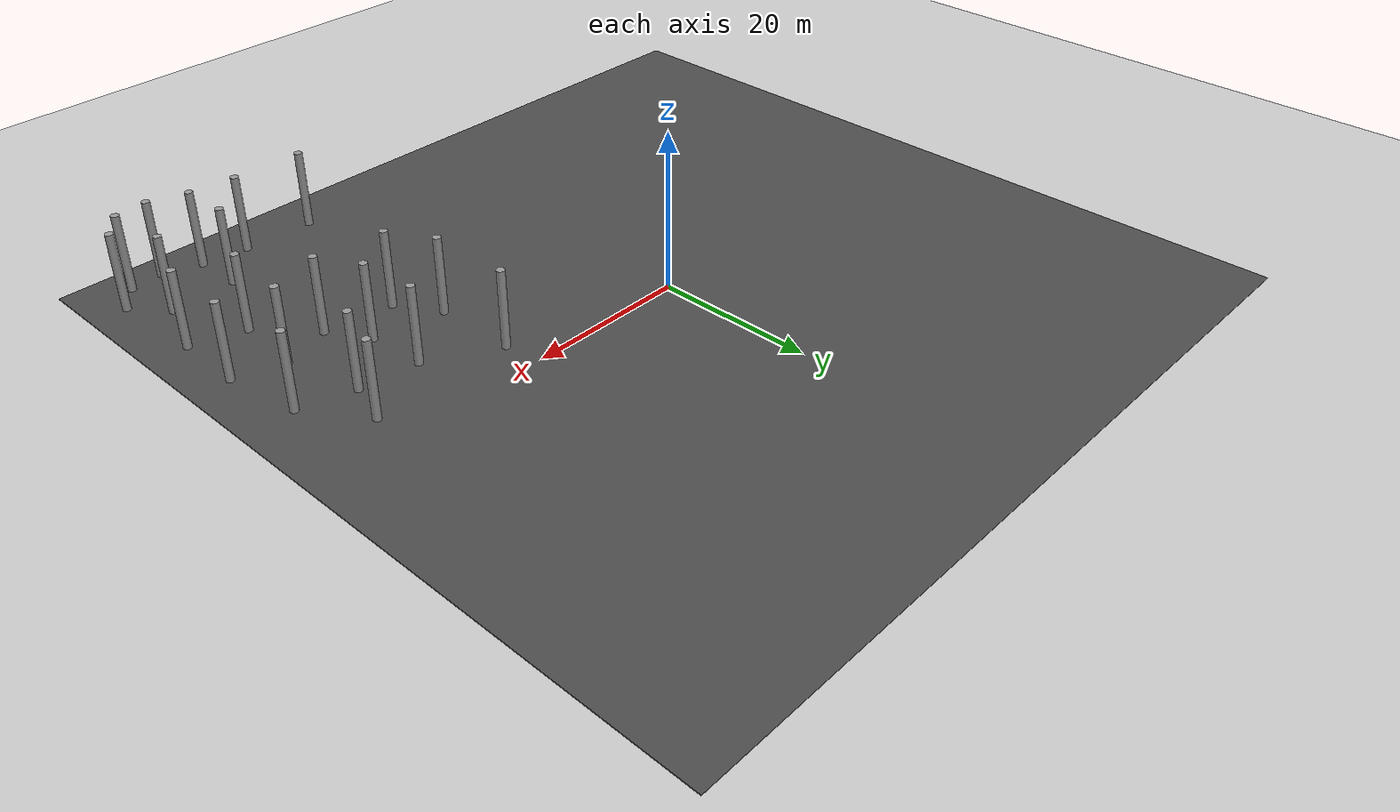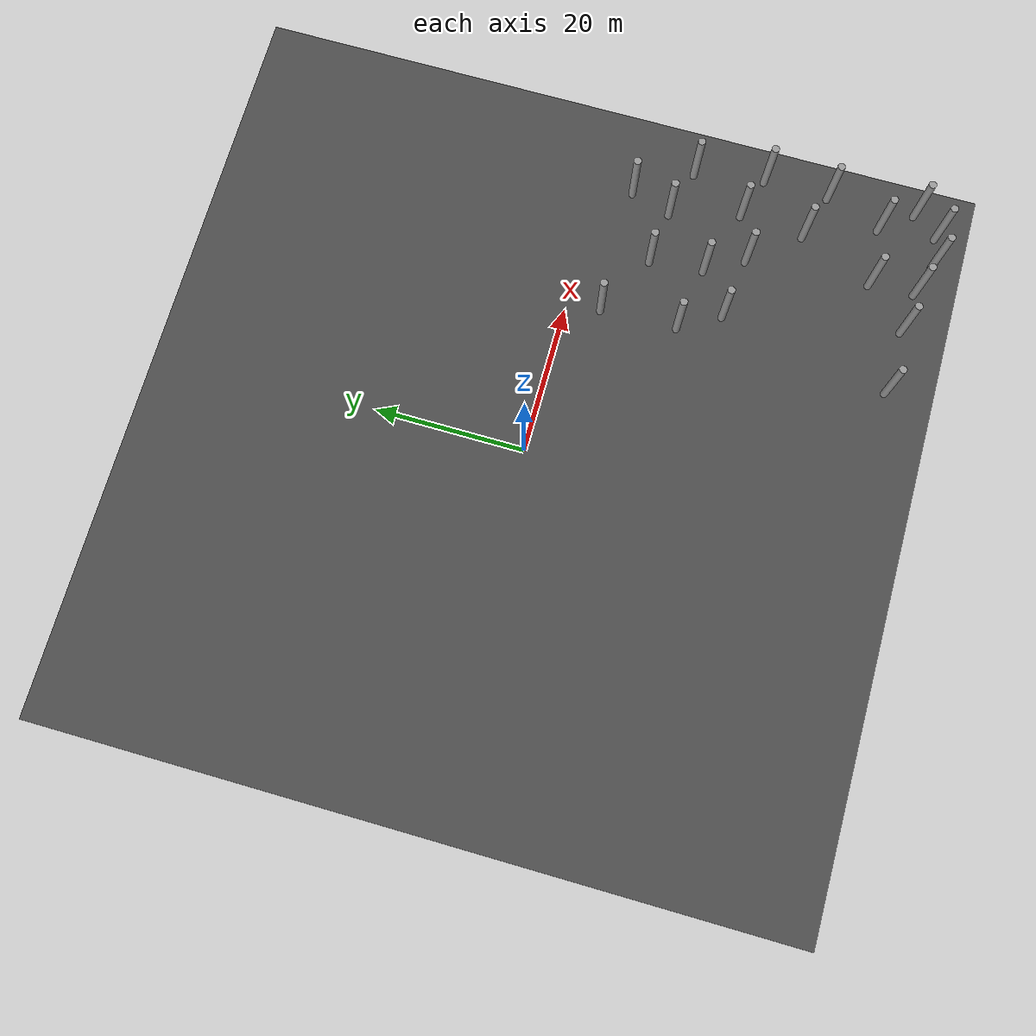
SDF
<sdf version="1.6">
 <world name="default">
  <model name="ground_plane">
   <static>1</static>
   <link name="link">
    <collision name="collision">
     <geometry><plane><normal>0 0 1</normal><size>100 100</size></plane></geometry>
     <surface><friction><ode><mu>100</mu><mu2>50</mu2></ode></friction></surface>
    </collision>
    <visual name="visual">
     <cast_shadows>0</cast_shadows>
     <geometry><plane><normal>0 0 1</normal><size>100 100</size></plane></geometry>
     <material>
      <script><uri>file://media/materials/scripts/gazebo.material</uri><name>Gazebo/Grey</name></script>
     </material>
    </visual>
   </link>
  </model>
  <model name="asphalt_plane">
   <static>1</static>
   <link name="link">
    <collision name="collision"><geometry><box><size>100 100 0.1</size></box></geometry></collision>
    <visual name="visual">
     <cast_shadows>0</cast_shadows>
     <geometry><box><size>100 100 0.1</size></box></geometry>
     <material>
      <script>
       <uri>model://asphalt_plane/materials/scripts</uri>
       <uri>model://asphalt_plane/materials/textures</uri>
       <name>vrc/asphalt</name>
      </script>
     </material>
    </visual>
   </link>
   <pose>0.078502 0.417861 0 0 -0 0</pose>
  </model>
  <model name="forest">
   <link name="link_clone_13_clone_111">
    <pose>20.5727 -42.2419 -0 0 -0 0</pose>
    <inertial>
     <mass>1000</mass>
     <inertia><ixx>0.145833</ixx><ixy>0</ixy><ixz>0</ixz><iyy>0.145833</iyy><iyz>0</iyz><izz>0.125</izz></inertia>
     <pose>0 0 5 0 -0 0</pose>
    </inertial>
    <visual name="visual">
     <geometry><cylinder><radius>0.5</radius><length>10</length></cylinder></geometry>
     <material>
      <script><name>Gazebo/Grey</name><uri>file://media/materials/scripts/gazebo.material</uri></script>
      <ambient>0.3 0.3 0.3 1</ambient>
      <diffuse>0.7 0.7 0.7 1</diffuse>
      <specular>0.01 0.01 0.01 1</specular>
      <emissive>0 0 0 1</emissive>
      <shader type="vertex"><normal_map>__default__</normal_map></shader>
     </material>
     <pose>0 0 5 0 -0 0</pose>
    </visual>
    <collision name="collision">
     <pose>0 0 5 0 -0 0</pose>
     <geometry><cylinder><radius>0.5</radius><length>10</length></cylinder></geometry>
     <surface>
      <friction>
       <ode><mu>1</mu><mu2>1</mu2><fdir1>0 0 0</fdir1><slip1>0</slip1><slip2>0</slip2></ode>
       <torsional>
        <coefficient>1</coefficient>
        <patch_radius>0</patch_radius>
        <surface_radius>0</surface_radius>
        <use_patch_radius>1</use_patch_radius>
        <ode><slip>0</slip></ode>
       </torsional>
      </friction>
      <bounce><restitution_coefficient>0</restitution_coefficient><threshold>1e+06</threshold></bounce>
      <contact>
       <collide_without_contact>0</collide_without_contact>
       <collide_without_contact_bitmask>1</collide_without_contact_bitmask>
       <collide_bitmask>1</collide_bitmask>
       <ode>
        <soft_cfm>0</soft_cfm>
        <soft_erp>0.2</soft_erp>
        <kp>1e+13</kp>
        <kd>1</kd>
        <max_vel>0.01</max_vel>
        <min_depth>0</min_depth>
       </ode>
       <bullet>
        <split_impulse>1</split_impulse>
        <split_impulse_penetration_threshold>-0.01</split_impulse_penetration_threshold>
        <soft_cfm>0</soft_cfm>
        <soft_erp>0.2</soft_erp>
        <kp>1e+13</kp>
        <kd>1</kd>
       </bullet>
      </contact>
     </surface>
    </collision>
   </link>
   <link name="link_clone_13_clone_114">
    <pose>29.3647 -42.4624 -0 0 -0 0</pose>
    <inertial>
     <mass>1000</mass>
     <inertia><ixx>0.145833</ixx><ixy>0</ixy><ixz>0</ixz><iyy>0.145833</iyy><iyz>0</iyz><izz>0.125</izz></inertia>
     <pose>0 0 5 0 -0 0</pose>
    </inertial>
    <visual name="visual">
     <geometry><cylinder><radius>0.5</radius><length>10</length></cylinder></geometry>
     <material>
      <script><name>Gazebo/Grey</name><uri>file://media/materials/scripts/gazebo.material</uri></script>
      <ambient>0.3 0.3 0.3 1</ambient>
      <diffuse>0.7 0.7 0.7 1</diffuse>
      <specular>0.01 0.01 0.01 1</specular>
      <emissive>0 0 0 1</emissive>
      <shader type="vertex"><normal_map>__default__</normal_map></shader>
     </material>
     <pose>0 0 5 0 -0 0</pose>
    </visual>
    <collision name="collision">
     <pose>0 0 5 0 -0 0</pose>
     <geometry><cylinder><radius>0.5</radius><length>10</length></cylinder></geometry>
     <surface>
      <friction>
       <ode><mu>1</mu><mu2>1</mu2><fdir1>0 0 0</fdir1><slip1>0</slip1><slip2>0</slip2></ode>
       <torsional>
        <coefficient>1</coefficient>
        <patch_radius>0</patch_radius>
        <surface_radius>0</surface_radius>
        <use_patch_radius>1</use_patch_radius>
        <ode><slip>0</slip></ode>
       </torsional>
      </friction>
      <bounce><restitution_coefficient>0</restitution_coefficient><threshold>1e+06</threshold></bounce>
      <contact>
       <collide_without_contact>0</collide_without_contact>
       <collide_without_contact_bitmask>1</collide_without_contact_bitmask>
       <collide_bitmask>1</collide_bitmask>
       <ode>
        <soft_cfm>0</soft_cfm>
        <soft_erp>0.2</soft_erp>
        <kp>1e+13</kp>
        <kd>1</kd>
        <max_vel>0.01</max_vel>
        <min_depth>0</min_depth>
       </ode>
       <bullet>
        <split_impulse>1</split_impulse>
        <split_impulse_penetration_threshold>-0.01</split_impulse_penetration_threshold>
        <soft_cfm>0</soft_cfm>
        <soft_erp>0.2</soft_erp>
        <kp>1e+13</kp>
        <kd>1</kd>
       </bullet>
      </contact>
     </surface>
    </collision>
   </link>
   <link name="link_clone_13_clone_116">
    <pose>34.7943 -37.0042 -0 0 -0 0</pose>
    <inertial>
     <mass>1000</mass>
     <inertia><ixx>0.145833</ixx><ixy>0</ixy><ixz>0</ixz><iyy>0.145833</iyy><iyz>0</iyz><izz>0.125</izz></inertia>
     <pose>0 0 5 0 -0 0</pose>
    </inertial>
    <visual name="visual">
     <geometry><cylinder><radius>0.5</radius><length>10</length></cylinder></geometry>
     <material>
      <script><name>Gazebo/Grey</name><uri>file://media/materials/scripts/gazebo.material</uri></script>
      <ambient>0.3 0.3 0.3 1</ambient>
      <diffuse>0.7 0.7 0.7 1</diffuse>
      <specular>0.01 0.01 0.01 1</specular>
      <emissive>0 0 0 1</emissive>
      <shader type="vertex"><normal_map>__default__</normal_map></shader>
     </material>
     <pose>0 0 5 0 -0 0</pose>
    </visual>
    <collision name="collision">
     <pose>0 0 5 0 -0 0</pose>
     <geometry><cylinder><radius>0.5</radius><length>10</length></cylinder></geometry>
     <surface>
      <friction>
       <ode><mu>1</mu><mu2>1</mu2><fdir1>0 0 0</fdir1><slip1>0</slip1><slip2>0</slip2></ode>
       <torsional>
        <coefficient>1</coefficient>
        <patch_radius>0</patch_radius>
        <surface_radius>0</surface_radius>
        <use_patch_radius>1</use_patch_radius>
        <ode><slip>0</slip></ode>
       </torsional>
      </friction>
      <bounce><restitution_coefficient>0</restitution_coefficient><threshold>1e+06</threshold></bounce>
      <contact>
       <collide_without_contact>0</collide_without_contact>
       <collide_without_contact_bitmask>1</collide_without_contact_bitmask>
       <collide_bitmask>1</collide_bitmask>
       <ode>
        <soft_cfm>0</soft_cfm>
        <soft_erp>0.2</soft_erp>
        <kp>1e+13</kp>
        <kd>1</kd>
        <max_vel>0.01</max_vel>
        <min_depth>0</min_depth>
       </ode>
       <bullet>
        <split_impulse>1</split_impulse>
        <split_impulse_penetration_threshold>-0.01</split_impulse_penetration_threshold>
        <soft_cfm>0</soft_cfm>
        <soft_erp>0.2</soft_erp>
        <kp>1e+13</kp>
        <kd>1</kd>
       </bullet>
      </contact>
     </surface>
    </collision>
   </link>
   <link name="link_clone_13_clone_118">
    <pose>42.8769 -36.5264 -0 0 -0 0</pose>
    <inertial>
     <mass>1000</mass>
     <inertia><ixx>0.145833</ixx><ixy>0</ixy><ixz>0</ixz><iyy>0.145833</iyy><iyz>0</iyz><izz>0.125</izz></inertia>
     <pose>0 0 5 0 -0 0</pose>
    </inertial>
    <visual name="visual">
     <geometry><cylinder><radius>0.5</radius><length>10</length></cylinder></geometry>
     <material>
      <script><name>Gazebo/Grey</name><uri>file://media/materials/scripts/gazebo.material</uri></script>
      <ambient>0.3 0.3 0.3 1</ambient>
      <diffuse>0.7 0.7 0.7 1</diffuse>
      <specular>0.01 0.01 0.01 1</specular>
      <emissive>0 0 0 1</emissive>
      <shader type="vertex"><normal_map>__default__</normal_map></shader>
     </material>
     <pose>0 0 5 0 -0 0</pose>
    </visual>
    <collision name="collision">
     <pose>0 0 5 0 -0 0</pose>
     <geometry><cylinder><radius>0.5</radius><length>10</length></cylinder></geometry>
     <surface>
      <friction>
       <ode><mu>1</mu><mu2>1</mu2><fdir1>0 0 0</fdir1><slip1>0</slip1><slip2>0</slip2></ode>
       <torsional>
        <coefficient>1</coefficient>
        <patch_radius>0</patch_radius>
        <surface_radius>0</surface_radius>
        <use_patch_radius>1</use_patch_radius>
        <ode><slip>0</slip></ode>
       </torsional>
      </friction>
      <bounce><restitution_coefficient>0</restitution_coefficient><threshold>1e+06</threshold></bounce>
      <contact>
       <collide_without_contact>0</collide_without_contact>
       <collide_without_contact_bitmask>1</collide_without_contact_bitmask>
       <collide_bitmask>1</collide_bitmask>
       <ode>
        <soft_cfm>0</soft_cfm>
        <soft_erp>0.2</soft_erp>
        <kp>1e+13</kp>
        <kd>1</kd>
        <max_vel>0.01</max_vel>
        <min_depth>0</min_depth>
       </ode>
       <bullet>
        <split_impulse>1</split_impulse>
        <split_impulse_penetration_threshold>-0.01</split_impulse_penetration_threshold>
        <soft_cfm>0</soft_cfm>
        <soft_erp>0.2</soft_erp>
        <kp>1e+13</kp>
        <kd>1</kd>
       </bullet>
      </contact>
     </surface>
    </collision>
   </link>
   <link name="link_clone_13_clone_119">
    <pose>45.5685 -28.9793 -0 0 -0 0</pose>
    <inertial>
     <mass>1000</mass>
     <inertia><ixx>0.145833</ixx><ixy>0</ixy><ixz>0</ixz><iyy>0.145833</iyy><iyz>0</iyz><izz>0.125</izz></inertia>
     <pose>0 0 5 0 -0 0</pose>
    </inertial>
    <visual name="visual">
     <geometry><cylinder><radius>0.5</radius><length>10</length></cylinder></geometry>
     <material>
      <script><name>Gazebo/Grey</name><uri>file://media/materials/scripts/gazebo.material</uri></script>
      <ambient>0.3 0.3 0.3 1</ambient>
      <diffuse>0.7 0.7 0.7 1</diffuse>
      <specular>0.01 0.01 0.01 1</specular>
      <emissive>0 0 0 1</emissive>
      <shader type="vertex"><normal_map>__default__</normal_map></shader>
     </material>
     <pose>0 0 5 0 -0 0</pose>
    </visual>
    <collision name="collision">
     <pose>0 0 5 0 -0 0</pose>
     <geometry><cylinder><radius>0.5</radius><length>10</length></cylinder></geometry>
     <surface>
      <friction>
       <ode><mu>1</mu><mu2>1</mu2><fdir1>0 0 0</fdir1><slip1>0</slip1><slip2>0</slip2></ode>
       <torsional>
        <coefficient>1</coefficient>
        <patch_radius>0</patch_radius>
        <surface_radius>0</surface_radius>
        <use_patch_radius>1</use_patch_radius>
        <ode><slip>0</slip></ode>
       </torsional>
      </friction>
      <bounce><restitution_coefficient>0</restitution_coefficient><threshold>1e+06</threshold></bounce>
      <contact>
       <collide_without_contact>0</collide_without_contact>
       <collide_without_contact_bitmask>1</collide_without_contact_bitmask>
       <collide_bitmask>1</collide_bitmask>
       <ode>
        <soft_cfm>0</soft_cfm>
        <soft_erp>0.2</soft_erp>
        <kp>1e+13</kp>
        <kd>1</kd>
        <max_vel>0.01</max_vel>
        <min_depth>0</min_depth>
       </ode>
       <bullet>
        <split_impulse>1</split_impulse>
        <split_impulse_penetration_threshold>-0.01</split_impulse_penetration_threshold>
        <soft_cfm>0</soft_cfm>
        <soft_erp>0.2</soft_erp>
        <kp>1e+13</kp>
        <kd>1</kd>
       </bullet>
      </contact>
     </surface>
    </collision>
   </link>
   <link name="link_clone_13_clone_120">
    <pose>35.0514 -43.0849 -0 0 -0 0</pose>
    <inertial>
     <mass>1000</mass>
     <inertia><ixx>0.145833</ixx><ixy>0</ixy><ixz>0</ixz><iyy>0.145833</iyy><iyz>0</iyz><izz>0.125</izz></inertia>
     <pose>0 0 5 0 -0 0</pose>
    </inertial>
    <visual name="visual">
     <geometry><cylinder><radius>0.5</radius><length>10</length></cylinder></geometry>
     <material>
      <script><name>Gazebo/Grey</name><uri>file://media/materials/scripts/gazebo.material</uri></script>
      <ambient>0.3 0.3 0.3 1</ambient>
      <diffuse>0.7 0.7 0.7 1</diffuse>
      <specular>0.01 0.01 0.01 1</specular>
      <emissive>0 0 0 1</emissive>
      <shader type="vertex"><normal_map>__default__</normal_map></shader>
     </material>
     <pose>0 0 5 0 -0 0</pose>
    </visual>
    <collision name="collision">
     <pose>0 0 5 0 -0 0</pose>
     <geometry><cylinder><radius>0.5</radius><length>10</length></cylinder></geometry>
     <surface>
      <friction>
       <ode><mu>1</mu><mu2>1</mu2><fdir1>0 0 0</fdir1><slip1>0</slip1><slip2>0</slip2></ode>
       <torsional>
        <coefficient>1</coefficient>
        <patch_radius>0</patch_radius>
        <surface_radius>0</surface_radius>
        <use_patch_radius>1</use_patch_radius>
        <ode><slip>0</slip></ode>
       </torsional>
      </friction>
      <bounce><restitution_coefficient>0</restitution_coefficient><threshold>1e+06</threshold></bounce>
      <contact>
       <collide_without_contact>0</collide_without_contact>
       <collide_without_contact_bitmask>1</collide_without_contact_bitmask>
       <collide_bitmask>1</collide_bitmask>
       <ode>
        <soft_cfm>0</soft_cfm>
        <soft_erp>0.2</soft_erp>
        <kp>1e+13</kp>
        <kd>1</kd>
        <max_vel>0.01</max_vel>
        <min_depth>0</min_depth>
       </ode>
       <bullet>
        <split_impulse>1</split_impulse>
        <split_impulse_penetration_threshold>-0.01</split_impulse_penetration_threshold>
        <soft_cfm>0</soft_cfm>
        <soft_erp>0.2</soft_erp>
        <kp>1e+13</kp>
        <kd>1</kd>
       </bullet>
      </contact>
     </surface>
    </collision>
   </link>
   <link name="link_clone_13_clone_121">
    <pose>39.6852 -44.6158 -0 0 -0 0</pose>
    <inertial>
     <mass>1000</mass>
     <inertia><ixx>0.145833</ixx><ixy>0</ixy><ixz>0</ixz><iyy>0.145833</iyy><iyz>0</iyz><izz>0.125</izz></inertia>
     <pose>0 0 5 0 -0 0</pose>
    </inertial>
    <visual name="visual">
     <geometry><cylinder><radius>0.5</radius><length>10</length></cylinder></geometry>
     <material>
      <script><name>Gazebo/Grey</name><uri>file://media/materials/scripts/gazebo.material</uri></script>
      <ambient>0.3 0.3 0.3 1</ambient>
      <diffuse>0.7 0.7 0.7 1</diffuse>
      <specular>0.01 0.01 0.01 1</specular>
      <emissive>0 0 0 1</emissive>
      <shader type="vertex"><normal_map>__default__</normal_map></shader>
     </material>
     <pose>0 0 5 0 -0 0</pose>
    </visual>
    <collision name="collision">
     <pose>0 0 5 0 -0 0</pose>
     <geometry><cylinder><radius>0.5</radius><length>10</length></cylinder></geometry>
     <surface>
      <friction>
       <ode><mu>1</mu><mu2>1</mu2><fdir1>0 0 0</fdir1><slip1>0</slip1><slip2>0</slip2></ode>
       <torsional>
        <coefficient>1</coefficient>
        <patch_radius>0</patch_radius>
        <surface_radius>0</surface_radius>
        <use_patch_radius>1</use_patch_radius>
        <ode><slip>0</slip></ode>
       </torsional>
      </friction>
      <bounce><restitution_coefficient>0</restitution_coefficient><threshold>1e+06</threshold></bounce>
      <contact>
       <collide_without_contact>0</collide_without_contact>
       <collide_without_contact_bitmask>1</collide_without_contact_bitmask>
       <collide_bitmask>1</collide_bitmask>
       <ode>
        <soft_cfm>0</soft_cfm>
        <soft_erp>0.2</soft_erp>
        <kp>1e+13</kp>
        <kd>1</kd>
        <max_vel>0.01</max_vel>
        <min_depth>0</min_depth>
       </ode>
       <bullet>
        <split_impulse>1</split_impulse>
        <split_impulse_penetration_threshold>-0.01</split_impulse_penetration_threshold>
        <soft_cfm>0</soft_cfm>
        <soft_erp>0.2</soft_erp>
        <kp>1e+13</kp>
        <kd>1</kd>
       </bullet>
      </contact>
     </surface>
    </collision>
   </link>
   <link name="link_clone_13_clone_122">
    <pose>43.7239 -44.1957 -0 0 -0 0</pose>
    <inertial>
     <mass>1000</mass>
     <inertia><ixx>0.145833</ixx><ixy>0</ixy><ixz>0</ixz><iyy>0.145833</iyy><iyz>0</iyz><izz>0.125</izz></inertia>
     <pose>0 0 5 0 -0 0</pose>
    </inertial>
    <visual name="visual">
     <geometry><cylinder><radius>0.5</radius><length>10</length></cylinder></geometry>
     <material>
      <script><name>Gazebo/Grey</name><uri>file://media/materials/scripts/gazebo.material</uri></script>
      <ambient>0.3 0.3 0.3 1</ambient>
      <diffuse>0.7 0.7 0.7 1</diffuse>
      <specular>0.01 0.01 0.01 1</specular>
      <emissive>0 0 0 1</emissive>
      <shader type="vertex"><normal_map>__default__</normal_map></shader>
     </material>
     <pose>0 0 5 0 -0 0</pose>
    </visual>
    <collision name="collision">
     <pose>0 0 5 0 -0 0</pose>
     <geometry><cylinder><radius>0.5</radius><length>10</length></cylinder></geometry>
     <surface>
      <friction>
       <ode><mu>1</mu><mu2>1</mu2><fdir1>0 0 0</fdir1><slip1>0</slip1><slip2>0</slip2></ode>
       <torsional>
        <coefficient>1</coefficient>
        <patch_radius>0</patch_radius>
        <surface_radius>0</surface_radius>
        <use_patch_radius>1</use_patch_radius>
        <ode><slip>0</slip></ode>
       </torsional>
      </friction>
      <bounce><restitution_coefficient>0</restitution_coefficient><threshold>1e+06</threshold></bounce>
      <contact>
       <collide_without_contact>0</collide_without_contact>
       <collide_without_contact_bitmask>1</collide_without_contact_bitmask>
       <collide_bitmask>1</collide_bitmask>
       <ode>
        <soft_cfm>0</soft_cfm>
        <soft_erp>0.2</soft_erp>
        <kp>1e+13</kp>
        <kd>1</kd>
        <max_vel>0.01</max_vel>
        <min_depth>0</min_depth>
       </ode>
       <bullet>
        <split_impulse>1</split_impulse>
        <split_impulse_penetration_threshold>-0.01</split_impulse_penetration_threshold>
        <soft_cfm>0</soft_cfm>
        <soft_erp>0.2</soft_erp>
        <kp>1e+13</kp>
        <kd>1</kd>
       </bullet>
      </contact>
     </surface>
    </collision>
   </link>
   <link name="link_clone_13_clone_123">
    <pose>46.2526 -40.8261 -0 0 -0 0</pose>
    <inertial>
     <mass>1000</mass>
     <inertia><ixx>0.145833</ixx><ixy>0</ixy><ixz>0</ixz><iyy>0.145833</iyy><iyz>0</iyz><izz>0.125</izz></inertia>
     <pose>0 0 5 0 -0 0</pose>
    </inertial>
    <visual name="visual">
     <geometry><cylinder><radius>0.5</radius><length>10</length></cylinder></geometry>
     <material>
      <script><name>Gazebo/Grey</name><uri>file://media/materials/scripts/gazebo.material</uri></script>
      <ambient>0.3 0.3 0.3 1</ambient>
      <diffuse>0.7 0.7 0.7 1</diffuse>
      <specular>0.01 0.01 0.01 1</specular>
      <emissive>0 0 0 1</emissive>
      <shader type="vertex"><normal_map>__default__</normal_map></shader>
     </material>
     <pose>0 0 5 0 -0 0</pose>
    </visual>
    <collision name="collision">
     <pose>0 0 5 0 -0 0</pose>
     <geometry><cylinder><radius>0.5</radius><length>10</length></cylinder></geometry>
     <surface>
      <friction>
       <ode><mu>1</mu><mu2>1</mu2><fdir1>0 0 0</fdir1><slip1>0</slip1><slip2>0</slip2></ode>
       <torsional>
        <coefficient>1</coefficient>
        <patch_radius>0</patch_radius>
        <surface_radius>0</surface_radius>
        <use_patch_radius>1</use_patch_radius>
        <ode><slip>0</slip></ode>
       </torsional>
      </friction>
      <bounce><restitution_coefficient>0</restitution_coefficient><threshold>1e+06</threshold></bounce>
      <contact>
       <collide_without_contact>0</collide_without_contact>
       <collide_without_contact_bitmask>1</collide_without_contact_bitmask>
       <collide_bitmask>1</collide_bitmask>
       <ode>
        <soft_cfm>0</soft_cfm>
        <soft_erp>0.2</soft_erp>
        <kp>1e+13</kp>
        <kd>1</kd>
        <max_vel>0.01</max_vel>
        <min_depth>0</min_depth>
       </ode>
       <bullet>
        <split_impulse>1</split_impulse>
        <split_impulse_penetration_threshold>-0.01</split_impulse_penetration_threshold>
        <soft_cfm>0</soft_cfm>
        <soft_erp>0.2</soft_erp>
        <kp>1e+13</kp>
        <kd>1</kd>
       </bullet>
      </contact>
     </surface>
    </collision>
   </link>
   <link name="link_clone_13_clone_124">
    <pose>45.7239 -20.1957 -0 0 -0 0</pose>
    <inertial>
     <mass>1000</mass>
     <inertia><ixx>0.145833</ixx><ixy>0</ixy><ixz>0</ixz><iyy>0.145833</iyy><iyz>0</iyz><izz>0.125</izz></inertia>
     <pose>0 0 5 0 -0 0</pose>
    </inertial>
    <visual name="visual">
     <geometry><cylinder><radius>0.5</radius><length>10</length></cylinder></geometry>
     <material>
      <script><name>Gazebo/Grey</name><uri>file://media/materials/scripts/gazebo.material</uri></script>
      <ambient>0.3 0.3 0.3 1</ambient>
      <diffuse>0.7 0.7 0.7 1</diffuse>
      <specular>0.01 0.01 0.01 1</specular>
      <emissive>0 0 0 1</emissive>
      <shader type="vertex"><normal_map>__default__</normal_map></shader>
     </material>
     <pose>0 0 5 0 -0 0</pose>
    </visual>
    <collision name="collision">
     <pose>0 0 5 0 -0 0</pose>
     <geometry><cylinder><radius>0.5</radius><length>10</length></cylinder></geometry>
     <surface>
      <friction>
       <ode><mu>1</mu><mu2>1</mu2><fdir1>0 0 0</fdir1><slip1>0</slip1><slip2>0</slip2></ode>
       <torsional>
        <coefficient>1</coefficient>
        <patch_radius>0</patch_radius>
        <surface_radius>0</surface_radius>
        <use_patch_radius>1</use_patch_radius>
        <ode><slip>0</slip></ode>
       </torsional>
      </friction>
      <bounce><restitution_coefficient>0</restitution_coefficient><threshold>1e+06</threshold></bounce>
      <contact>
       <collide_without_contact>0</collide_without_contact>
       <collide_without_contact_bitmask>1</collide_without_contact_bitmask>
       <collide_bitmask>1</collide_bitmask>
       <ode>
        <soft_cfm>0</soft_cfm>
        <soft_erp>0.2</soft_erp>
        <kp>1e+13</kp>
        <kd>1</kd>
        <max_vel>0.01</max_vel>
        <min_depth>0</min_depth>
       </ode>
       <bullet>
        <split_impulse>1</split_impulse>
        <split_impulse_penetration_threshold>-0.01</split_impulse_penetration_threshold>
        <soft_cfm>0</soft_cfm>
        <soft_erp>0.2</soft_erp>
        <kp>1e+13</kp>
        <kd>1</kd>
       </bullet>
      </contact>
     </surface>
    </collision>
   </link>
   <link name="link_clone_13_clone_125">
    <pose>39.883 -18.2641 -0 0 -0 0</pose>
    <inertial>
     <mass>1000</mass>
     <inertia><ixx>0.145833</ixx><ixy>0</ixy><ixz>0</ixz><iyy>0.145833</iyy><iyz>0</iyz><izz>0.125</izz></inertia>
     <pose>0 0 5 0 -0 0</pose>
    </inertial>
    <visual name="visual">
     <geometry><cylinder><radius>0.5</radius><length>10</length></cylinder></geometry>
     <material>
      <script><name>Gazebo/Grey</name><uri>file://media/materials/scripts/gazebo.material</uri></script>
      <ambient>0.3 0.3 0.3 1</ambient>
      <diffuse>0.7 0.7 0.7 1</diffuse>
      <specular>0.01 0.01 0.01 1</specular>
      <emissive>0 0 0 1</emissive>
      <shader type="vertex"><normal_map>__default__</normal_map></shader>
     </material>
     <pose>0 0 5 0 -0 0</pose>
    </visual>
    <collision name="collision">
     <pose>0 0 5 0 -0 0</pose>
     <geometry><cylinder><radius>0.5</radius><length>10</length></cylinder></geometry>
     <surface>
      <friction>
       <ode><mu>1</mu><mu2>1</mu2><fdir1>0 0 0</fdir1><slip1>0</slip1><slip2>0</slip2></ode>
       <torsional>
        <coefficient>1</coefficient>
        <patch_radius>0</patch_radius>
        <surface_radius>0</surface_radius>
        <use_patch_radius>1</use_patch_radius>
        <ode><slip>0</slip></ode>
       </torsional>
      </friction>
      <bounce><restitution_coefficient>0</restitution_coefficient><threshold>1e+06</threshold></bounce>
      <contact>
       <collide_without_contact>0</collide_without_contact>
       <collide_without_contact_bitmask>1</collide_without_contact_bitmask>
       <collide_bitmask>1</collide_bitmask>
       <ode>
        <soft_cfm>0</soft_cfm>
        <soft_erp>0.2</soft_erp>
        <kp>1e+13</kp>
        <kd>1</kd>
        <max_vel>0.01</max_vel>
        <min_depth>0</min_depth>
       </ode>
       <bullet>
        <split_impulse>1</split_impulse>
        <split_impulse_penetration_threshold>-0.01</split_impulse_penetration_threshold>
        <soft_cfm>0</soft_cfm>
        <soft_erp>0.2</soft_erp>
        <kp>1e+13</kp>
        <kd>1</kd>
       </bullet>
      </contact>
     </surface>
    </collision>
   </link>
   <link name="link_clone_13_clone_126">
    <pose>30.7425 -15.318 -0 0 -0 0</pose>
    <inertial>
     <mass>1000</mass>
     <inertia><ixx>0.145833</ixx><ixy>0</ixy><ixz>0</ixz><iyy>0.145833</iyy><iyz>0</iyz><izz>0.125</izz></inertia>
     <pose>0 0 5 0 -0 0</pose>
    </inertial>
    <visual name="visual">
     <geometry><cylinder><radius>0.5</radius><length>10</length></cylinder></geometry>
     <material>
      <script><name>Gazebo/Grey</name><uri>file://media/materials/scripts/gazebo.material</uri></script>
      <ambient>0.3 0.3 0.3 1</ambient>
      <diffuse>0.7 0.7 0.7 1</diffuse>
      <specular>0.01 0.01 0.01 1</specular>
      <emissive>0 0 0 1</emissive>
      <shader type="vertex"><normal_map>__default__</normal_map></shader>
     </material>
     <pose>0 0 5 0 -0 0</pose>
    </visual>
    <collision name="collision">
     <pose>0 0 5 0 -0 0</pose>
     <geometry><cylinder><radius>0.5</radius><length>10</length></cylinder></geometry>
     <surface>
      <friction>
       <ode><mu>1</mu><mu2>1</mu2><fdir1>0 0 0</fdir1><slip1>0</slip1><slip2>0</slip2></ode>
       <torsional>
        <coefficient>1</coefficient>
        <patch_radius>0</patch_radius>
        <surface_radius>0</surface_radius>
        <use_patch_radius>1</use_patch_radius>
        <ode><slip>0</slip></ode>
       </torsional>
      </friction>
      <bounce><restitution_coefficient>0</restitution_coefficient><threshold>1e+06</threshold></bounce>
      <contact>
       <collide_without_contact>0</collide_without_contact>
       <collide_without_contact_bitmask>1</collide_without_contact_bitmask>
       <collide_bitmask>1</collide_bitmask>
       <ode>
        <soft_cfm>0</soft_cfm>
        <soft_erp>0.2</soft_erp>
        <kp>1e+13</kp>
        <kd>1</kd>
        <max_vel>0.01</max_vel>
        <min_depth>0</min_depth>
       </ode>
       <bullet>
        <split_impulse>1</split_impulse>
        <split_impulse_penetration_threshold>-0.01</split_impulse_penetration_threshold>
        <soft_cfm>0</soft_cfm>
        <soft_erp>0.2</soft_erp>
        <kp>1e+13</kp>
        <kd>1</kd>
       </bullet>
      </contact>
     </surface>
    </collision>
   </link>
   <link name="link_clone_13_clone_127">
    <pose>21.9121 -13.8636 -0 0 -0 0</pose>
    <inertial>
     <mass>1000</mass>
     <inertia><ixx>0.145833</ixx><ixy>0</ixy><ixz>0</ixz><iyy>0.145833</iyy><iyz>0</iyz><izz>0.125</izz></inertia>
     <pose>0 0 5 0 -0 0</pose>
    </inertial>
    <visual name="visual">
     <geometry><cylinder><radius>0.5</radius><length>10</length></cylinder></geometry>
     <material>
      <script><name>Gazebo/Grey</name><uri>file://media/materials/scripts/gazebo.material</uri></script>
      <ambient>0.3 0.3 0.3 1</ambient>
      <diffuse>0.7 0.7 0.7 1</diffuse>
      <specular>0.01 0.01 0.01 1</specular>
      <emissive>0 0 0 1</emissive>
      <shader type="vertex"><normal_map>__default__</normal_map></shader>
     </material>
     <pose>0 0 5 0 -0 0</pose>
    </visual>
    <collision name="collision">
     <pose>0 0 5 0 -0 0</pose>
     <geometry><cylinder><radius>0.5</radius><length>10</length></cylinder></geometry>
     <surface>
      <friction>
       <ode><mu>1</mu><mu2>1</mu2><fdir1>0 0 0</fdir1><slip1>0</slip1><slip2>0</slip2></ode>
       <torsional>
        <coefficient>1</coefficient>
        <patch_radius>0</patch_radius>
        <surface_radius>0</surface_radius>
        <use_patch_radius>1</use_patch_radius>
        <ode><slip>0</slip></ode>
       </torsional>
      </friction>
      <bounce><restitution_coefficient>0</restitution_coefficient><threshold>1e+06</threshold></bounce>
      <contact>
       <collide_without_contact>0</collide_without_contact>
       <collide_without_contact_bitmask>1</collide_without_contact_bitmask>
       <collide_bitmask>1</collide_bitmask>
       <ode>
        <soft_cfm>0</soft_cfm>
        <soft_erp>0.2</soft_erp>
        <kp>1e+13</kp>
        <kd>1</kd>
        <max_vel>0.01</max_vel>
        <min_depth>0</min_depth>
       </ode>
       <bullet>
        <split_impulse>1</split_impulse>
        <split_impulse_penetration_threshold>-0.01</split_impulse_penetration_threshold>
        <soft_cfm>0</soft_cfm>
        <soft_erp>0.2</soft_erp>
        <kp>1e+13</kp>
        <kd>1</kd>
       </bullet>
      </contact>
     </surface>
    </collision>
   </link>
   <link name="link_clone_13_clone_131">
    <pose>25.0821 -19.2659 -0 0 -0 0</pose>
    <inertial>
     <mass>1000</mass>
     <inertia><ixx>0.145833</ixx><ixy>0</ixy><ixz>0</ixz><iyy>0.145833</iyy><iyz>0</iyz><izz>0.125</izz></inertia>
     <pose>0 0 5 0 -0 0</pose>
    </inertial>
    <visual name="visual">
     <geometry><cylinder><radius>0.5</radius><length>10</length></cylinder></geometry>
     <material>
      <script><name>Gazebo/Grey</name><uri>file://media/materials/scripts/gazebo.material</uri></script>
      <ambient>0.3 0.3 0.3 1</ambient>
      <diffuse>0.7 0.7 0.7 1</diffuse>
      <specular>0.01 0.01 0.01 1</specular>
      <emissive>0 0 0 1</emissive>
      <shader type="vertex"><normal_map>__default__</normal_map></shader>
     </material>
     <pose>0 0 5 0 -0 0</pose>
    </visual>
    <collision name="collision">
     <pose>0 0 5 0 -0 0</pose>
     <geometry><cylinder><radius>0.5</radius><length>10</length></cylinder></geometry>
     <surface>
      <friction>
       <ode><mu>1</mu><mu2>1</mu2><fdir1>0 0 0</fdir1><slip1>0</slip1><slip2>0</slip2></ode>
       <torsional>
        <coefficient>1</coefficient>
        <patch_radius>0</patch_radius>
        <surface_radius>0</surface_radius>
        <use_patch_radius>1</use_patch_radius>
        <ode><slip>0</slip></ode>
       </torsional>
      </friction>
      <bounce><restitution_coefficient>0</restitution_coefficient><threshold>1e+06</threshold></bounce>
      <contact>
       <collide_without_contact>0</collide_without_contact>
       <collide_without_contact_bitmask>1</collide_without_contact_bitmask>
       <collide_bitmask>1</collide_bitmask>
       <ode>
        <soft_cfm>0</soft_cfm>
        <soft_erp>0.2</soft_erp>
        <kp>1e+13</kp>
        <kd>1</kd>
        <max_vel>0.01</max_vel>
        <min_depth>0</min_depth>
       </ode>
       <bullet>
        <split_impulse>1</split_impulse>
        <split_impulse_penetration_threshold>-0.01</split_impulse_penetration_threshold>
        <soft_cfm>0</soft_cfm>
        <soft_erp>0.2</soft_erp>
        <kp>1e+13</kp>
        <kd>1</kd>
       </bullet>
      </contact>
     </surface>
    </collision>
   </link>
   <link name="link_clone_13_clone_132">
    <pose>39.1243 -26.9569 -0 0 -0 0</pose>
    <inertial>
     <mass>1000</mass>
     <inertia><ixx>0.145833</ixx><ixy>0</ixy><ixz>0</ixz><iyy>0.145833</iyy><iyz>0</iyz><izz>0.125</izz></inertia>
     <pose>0 0 5 0 -0 0</pose>
    </inertial>
    <visual name="visual">
     <geometry><cylinder><radius>0.5</radius><length>10</length></cylinder></geometry>
     <material>
      <script><name>Gazebo/Grey</name><uri>file://media/materials/scripts/gazebo.material</uri></script>
      <ambient>0.3 0.3 0.3 1</ambient>
      <diffuse>0.7 0.7 0.7 1</diffuse>
      <specular>0.01 0.01 0.01 1</specular>
      <emissive>0 0 0 1</emissive>
      <shader type="vertex"><normal_map>__default__</normal_map></shader>
     </material>
     <pose>0 0 5 0 -0 0</pose>
    </visual>
    <collision name="collision">
     <pose>0 0 5 0 -0 0</pose>
     <geometry><cylinder><radius>0.5</radius><length>10</length></cylinder></geometry>
     <surface>
      <friction>
       <ode><mu>1</mu><mu2>1</mu2><fdir1>0 0 0</fdir1><slip1>0</slip1><slip2>0</slip2></ode>
       <torsional>
        <coefficient>1</coefficient>
        <patch_radius>0</patch_radius>
        <surface_radius>0</surface_radius>
        <use_patch_radius>1</use_patch_radius>
        <ode><slip>0</slip></ode>
       </torsional>
      </friction>
      <bounce><restitution_coefficient>0</restitution_coefficient><threshold>1e+06</threshold></bounce>
      <contact>
       <collide_without_contact>0</collide_without_contact>
       <collide_without_contact_bitmask>1</collide_without_contact_bitmask>
       <collide_bitmask>1</collide_bitmask>
       <ode>
        <soft_cfm>0</soft_cfm>
        <soft_erp>0.2</soft_erp>
        <kp>1e+13</kp>
        <kd>1</kd>
        <max_vel>0.01</max_vel>
        <min_depth>0</min_depth>
       </ode>
       <bullet>
        <split_impulse>1</split_impulse>
        <split_impulse_penetration_threshold>-0.01</split_impulse_penetration_threshold>
        <soft_cfm>0</soft_cfm>
        <soft_erp>0.2</soft_erp>
        <kp>1e+13</kp>
        <kd>1</kd>
       </bullet>
      </contact>
     </surface>
    </collision>
   </link>
   <link name="link_clone_13_clone_133">
    <pose>33.6453 -20.4118 -0 0 -0 0</pose>
    <inertial>
     <mass>1000</mass>
     <inertia><ixx>0.145833</ixx><ixy>0</ixy><ixz>0</ixz><iyy>0.145833</iyy><iyz>0</iyz><izz>0.125</izz></inertia>
     <pose>0 0 5 0 -0 0</pose>
    </inertial>
    <visual name="visual">
     <geometry><cylinder><radius>0.5</radius><length>10</length></cylinder></geometry>
     <material>
      <script><name>Gazebo/Grey</name><uri>file://media/materials/scripts/gazebo.material</uri></script>
      <ambient>0.3 0.3 0.3 1</ambient>
      <diffuse>0.7 0.7 0.7 1</diffuse>
      <specular>0.01 0.01 0.01 1</specular>
      <emissive>0 0 0 1</emissive>
      <shader type="vertex"><normal_map>__default__</normal_map></shader>
     </material>
     <pose>0 0 5 0 -0 0</pose>
    </visual>
    <collision name="collision">
     <pose>0 0 5 0 -0 0</pose>
     <geometry><cylinder><radius>0.5</radius><length>10</length></cylinder></geometry>
     <surface>
      <friction>
       <ode><mu>1</mu><mu2>1</mu2><fdir1>0 0 0</fdir1><slip1>0</slip1><slip2>0</slip2></ode>
       <torsional>
        <coefficient>1</coefficient>
        <patch_radius>0</patch_radius>
        <surface_radius>0</surface_radius>
        <use_patch_radius>1</use_patch_radius>
        <ode><slip>0</slip></ode>
       </torsional>
      </friction>
      <bounce><restitution_coefficient>0</restitution_coefficient><threshold>1e+06</threshold></bounce>
      <contact>
       <collide_without_contact>0</collide_without_contact>
       <collide_without_contact_bitmask>1</collide_without_contact_bitmask>
       <collide_bitmask>1</collide_bitmask>
       <ode>
        <soft_cfm>0</soft_cfm>
        <soft_erp>0.2</soft_erp>
        <kp>1e+13</kp>
        <kd>1</kd>
        <max_vel>0.01</max_vel>
        <min_depth>0</min_depth>
       </ode>
       <bullet>
        <split_impulse>1</split_impulse>
        <split_impulse_penetration_threshold>-0.01</split_impulse_penetration_threshold>
        <soft_cfm>0</soft_cfm>
        <soft_erp>0.2</soft_erp>
        <kp>1e+13</kp>
        <kd>1</kd>
       </bullet>
      </contact>
     </surface>
    </collision>
   </link>
   <link name="link_clone_13_clone_134">
    <pose>44.1443 -10.74 -0 0 -0 0</pose>
    <inertial>
     <mass>1000</mass>
     <inertia><ixx>0.145833</ixx><ixy>0</ixy><ixz>0</ixz><iyy>0.145833</iyy><iyz>0</iyz><izz>0.125</izz></inertia>
     <pose>0 0 5 0 -0 0</pose>
    </inertial>
    <visual name="visual">
     <geometry><cylinder><radius>0.5</radius><length>10</length></cylinder></geometry>
     <material>
      <script><name>Gazebo/Grey</name><uri>file://media/materials/scripts/gazebo.material</uri></script>
      <ambient>0.3 0.3 0.3 1</ambient>
      <diffuse>0.7 0.7 0.7 1</diffuse>
      <specular>0.01 0.01 0.01 1</specular>
      <emissive>0 0 0 1</emissive>
      <shader type="vertex"><normal_map>__default__</normal_map></shader>
     </material>
     <pose>0 0 5 0 -0 0</pose>
    </visual>
    <collision name="collision">
     <pose>0 0 5 0 -0 0</pose>
     <geometry><cylinder><radius>0.5</radius><length>10</length></cylinder></geometry>
     <surface>
      <friction>
       <ode><mu>1</mu><mu2>1</mu2><fdir1>0 0 0</fdir1><slip1>0</slip1><slip2>0</slip2></ode>
       <torsional>
        <coefficient>1</coefficient>
        <patch_radius>0</patch_radius>
        <surface_radius>0</surface_radius>
        <use_patch_radius>1</use_patch_radius>
        <ode><slip>0</slip></ode>
       </torsional>
      </friction>
      <bounce><restitution_coefficient>0</restitution_coefficient><threshold>1e+06</threshold></bounce>
      <contact>
       <collide_without_contact>0</collide_without_contact>
       <collide_without_contact_bitmask>1</collide_without_contact_bitmask>
       <collide_bitmask>1</collide_bitmask>
       <ode>
        <soft_cfm>0</soft_cfm>
        <soft_erp>0.2</soft_erp>
        <kp>1e+13</kp>
        <kd>1</kd>
        <max_vel>0.01</max_vel>
        <min_depth>0</min_depth>
       </ode>
       <bullet>
        <split_impulse>1</split_impulse>
        <split_impulse_penetration_threshold>-0.01</split_impulse_penetration_threshold>
        <soft_cfm>0</soft_cfm>
        <soft_erp>0.2</soft_erp>
        <kp>1e+13</kp>
        <kd>1</kd>
       </bullet>
      </contact>
     </surface>
    </collision>
   </link>
   <link name="link_clone_13_clone_135">
    <pose>37.4759 -8.85809 -0 0 -0 0</pose>
    <inertial>
     <mass>1000</mass>
     <inertia><ixx>0.145833</ixx><ixy>0</ixy><ixz>0</ixz><iyy>0.145833</iyy><iyz>0</iyz><izz>0.125</izz></inertia>
     <pose>0 0 5 0 -0 0</pose>
    </inertial>
    <visual name="visual">
     <geometry><cylinder><radius>0.5</radius><length>10</length></cylinder></geometry>
     <material>
      <script><name>Gazebo/Grey</name><uri>file://media/materials/scripts/gazebo.material</uri></script>
      <ambient>0.3 0.3 0.3 1</ambient>
      <diffuse>0.7 0.7 0.7 1</diffuse>
      <specular>0.01 0.01 0.01 1</specular>
      <emissive>0 0 0 1</emissive>
      <shader type="vertex"><normal_map>__default__</normal_map></shader>
     </material>
     <pose>0 0 5 0 -0 0</pose>
    </visual>
    <collision name="collision">
     <pose>0 0 5 0 -0 0</pose>
     <geometry><cylinder><radius>0.5</radius><length>10</length></cylinder></geometry>
     <surface>
      <friction>
       <ode><mu>1</mu><mu2>1</mu2><fdir1>0 0 0</fdir1><slip1>0</slip1><slip2>0</slip2></ode>
       <torsional>
        <coefficient>1</coefficient>
        <patch_radius>0</patch_radius>
        <surface_radius>0</surface_radius>
        <use_patch_radius>1</use_patch_radius>
        <ode><slip>0</slip></ode>
       </torsional>
      </friction>
      <bounce><restitution_coefficient>0</restitution_coefficient><threshold>1e+06</threshold></bounce>
      <contact>
       <collide_without_contact>0</collide_without_contact>
       <collide_without_contact_bitmask>1</collide_without_contact_bitmask>
       <collide_bitmask>1</collide_bitmask>
       <ode>
        <soft_cfm>0</soft_cfm>
        <soft_erp>0.2</soft_erp>
        <kp>1e+13</kp>
        <kd>1</kd>
        <max_vel>0.01</max_vel>
        <min_depth>0</min_depth>
       </ode>
       <bullet>
        <split_impulse>1</split_impulse>
        <split_impulse_penetration_threshold>-0.01</split_impulse_penetration_threshold>
        <soft_cfm>0</soft_cfm>
        <soft_erp>0.2</soft_erp>
        <kp>1e+13</kp>
        <kd>1</kd>
       </bullet>
      </contact>
     </surface>
    </collision>
   </link>
   <link name="link_clone_13_clone_136">
    <pose>30.1055 -8.05387 -0 0 -0 0</pose>
    <inertial>
     <mass>1000</mass>
     <inertia><ixx>0.145833</ixx><ixy>0</ixy><ixz>0</ixz><iyy>0.145833</iyy><iyz>0</iyz><izz>0.125</izz></inertia>
     <pose>0 0 5 0 -0 0</pose>
    </inertial>
    <visual name="visual">
     <geometry><cylinder><radius>0.5</radius><length>10</length></cylinder></geometry>
     <material>
      <script><name>Gazebo/Grey</name><uri>file://media/materials/scripts/gazebo.material</uri></script>
      <ambient>0.3 0.3 0.3 1</ambient>
      <diffuse>0.7 0.7 0.7 1</diffuse>
      <specular>0.01 0.01 0.01 1</specular>
      <emissive>0 0 0 1</emissive>
      <shader type="vertex"><normal_map>__default__</normal_map></shader>
     </material>
     <pose>0 0 5 0 -0 0</pose>
    </visual>
    <collision name="collision">
     <pose>0 0 5 0 -0 0</pose>
     <geometry><cylinder><radius>0.5</radius><length>10</length></cylinder></geometry>
     <surface>
      <friction>
       <ode><mu>1</mu><mu2>1</mu2><fdir1>0 0 0</fdir1><slip1>0</slip1><slip2>0</slip2></ode>
       <torsional>
        <coefficient>1</coefficient>
        <patch_radius>0</patch_radius>
        <surface_radius>0</surface_radius>
        <use_patch_radius>1</use_patch_radius>
        <ode><slip>0</slip></ode>
       </torsional>
      </friction>
      <bounce><restitution_coefficient>0</restitution_coefficient><threshold>1e+06</threshold></bounce>
      <contact>
       <collide_without_contact>0</collide_without_contact>
       <collide_without_contact_bitmask>1</collide_without_contact_bitmask>
       <collide_bitmask>1</collide_bitmask>
       <ode>
        <soft_cfm>0</soft_cfm>
        <soft_erp>0.2</soft_erp>
        <kp>1e+13</kp>
        <kd>1</kd>
        <max_vel>0.01</max_vel>
        <min_depth>0</min_depth>
       </ode>
       <bullet>
        <split_impulse>1</split_impulse>
        <split_impulse_penetration_threshold>-0.01</split_impulse_penetration_threshold>
        <soft_cfm>0</soft_cfm>
        <soft_erp>0.2</soft_erp>
        <kp>1e+13</kp>
        <kd>1</kd>
       </bullet>
      </contact>
     </surface>
    </collision>
   </link>
   <link name="link_clone_13_clone_137">
    <pose>21.6359 -3.53021 -0 0 -0 0</pose>
    <inertial>
     <mass>1000</mass>
     <inertia><ixx>0.145833</ixx><ixy>0</ixy><ixz>0</ixz><iyy>0.145833</iyy><iyz>0</iyz><izz>0.125</izz></inertia>
     <pose>0 0 5 0 -0 0</pose>
    </inertial>
    <visual name="visual">
     <geometry><cylinder><radius>0.5</radius><length>10</length></cylinder></geometry>
     <material>
      <script><name>Gazebo/Grey</name><uri>file://media/materials/scripts/gazebo.material</uri></script>
      <ambient>0.3 0.3 0.3 1</ambient>
      <diffuse>0.7 0.7 0.7 1</diffuse>
      <specular>0.01 0.01 0.01 1</specular>
      <emissive>0 0 0 1</emissive>
      <shader type="vertex"><normal_map>__default__</normal_map></shader>
     </material>
     <pose>0 0 5 0 -0 0</pose>
    </visual>
    <collision name="collision">
     <pose>0 0 5 0 -0 0</pose>
     <geometry><cylinder><radius>0.5</radius><length>10</length></cylinder></geometry>
     <surface>
      <friction>
       <ode><mu>1</mu><mu2>1</mu2><fdir1>0 0 0</fdir1><slip1>0</slip1><slip2>0</slip2></ode>
       <torsional>
        <coefficient>1</coefficient>
        <patch_radius>0</patch_radius>
        <surface_radius>0</surface_radius>
        <use_patch_radius>1</use_patch_radius>
        <ode><slip>0</slip></ode>
       </torsional>
      </friction>
      <bounce><restitution_coefficient>0</restitution_coefficient><threshold>1e+06</threshold></bounce>
      <contact>
       <collide_without_contact>0</collide_without_contact>
       <collide_without_contact_bitmask>1</collide_without_contact_bitmask>
       <collide_bitmask>1</collide_bitmask>
       <ode>
        <soft_cfm>0</soft_cfm>
        <soft_erp>0.2</soft_erp>
        <kp>1e+13</kp>
        <kd>1</kd>
        <max_vel>0.01</max_vel>
        <min_depth>0</min_depth>
       </ode>
       <bullet>
        <split_impulse>1</split_impulse>
        <split_impulse_penetration_threshold>-0.01</split_impulse_penetration_threshold>
        <soft_cfm>0</soft_cfm>
        <soft_erp>0.2</soft_erp>
        <kp>1e+13</kp>
        <kd>1</kd>
       </bullet>
      </contact>
     </surface>
    </collision>
   </link>
   <link name="link_clone_13_clone_141">
    <pose>39.1973 -3.37171 -0 0 -0 0</pose>
    <inertial>
     <mass>1000</mass>
     <inertia><ixx>0.145833</ixx><ixy>0</ixy><ixz>0</ixz><iyy>0.145833</iyy><iyz>0</iyz><izz>0.125</izz></inertia>
     <pose>0 0 5 0 -0 0</pose>
    </inertial>
    <visual name="visual">
     <geometry><cylinder><radius>0.5</radius><length>10</length></cylinder></geometry>
     <material>
      <script><name>Gazebo/Grey</name><uri>file://media/materials/scripts/gazebo.material</uri></script>
      <ambient>0.3 0.3 0.3 1</ambient>
      <diffuse>0.7 0.7 0.7 1</diffuse>
      <specular>0.01 0.01 0.01 1</specular>
      <emissive>0 0 0 1</emissive>
      <shader type="vertex"><normal_map>__default__</normal_map></shader>
     </material>
     <pose>0 0 5 0 -0 0</pose>
    </visual>
    <collision name="collision">
     <pose>0 0 5 0 -0 0</pose>
     <geometry><cylinder><radius>0.5</radius><length>10</length></cylinder></geometry>
     <surface>
      <friction>
       <ode><mu>1</mu><mu2>1</mu2><fdir1>0 0 0</fdir1><slip1>0</slip1><slip2>0</slip2></ode>
       <torsional>
        <coefficient>1</coefficient>
        <patch_radius>0</patch_radius>
        <surface_radius>0</surface_radius>
        <use_patch_radius>1</use_patch_radius>
        <ode><slip>0</slip></ode>
       </torsional>
      </friction>
      <bounce><restitution_coefficient>0</restitution_coefficient><threshold>1e+06</threshold></bounce>
      <contact>
       <collide_without_contact>0</collide_without_contact>
       <collide_without_contact_bitmask>1</collide_without_contact_bitmask>
       <collide_bitmask>1</collide_bitmask>
       <ode>
        <soft_cfm>0</soft_cfm>
        <soft_erp>0.2</soft_erp>
        <kp>1e+13</kp>
        <kd>1</kd>
        <max_vel>0.01</max_vel>
        <min_depth>0</min_depth>
       </ode>
       <bullet>
        <split_impulse>1</split_impulse>
        <split_impulse_penetration_threshold>-0.01</split_impulse_penetration_threshold>
        <soft_cfm>0</soft_cfm>
        <soft_erp>0.2</soft_erp>
        <kp>1e+13</kp>
        <kd>1</kd>
       </bullet>
      </contact>
     </surface>
    </collision>
   </link>
   <static>1</static>
   <pose>-0.461627 -0.993358 0 0 -0 0</pose>
  </model>
 </world>
</sdf>
